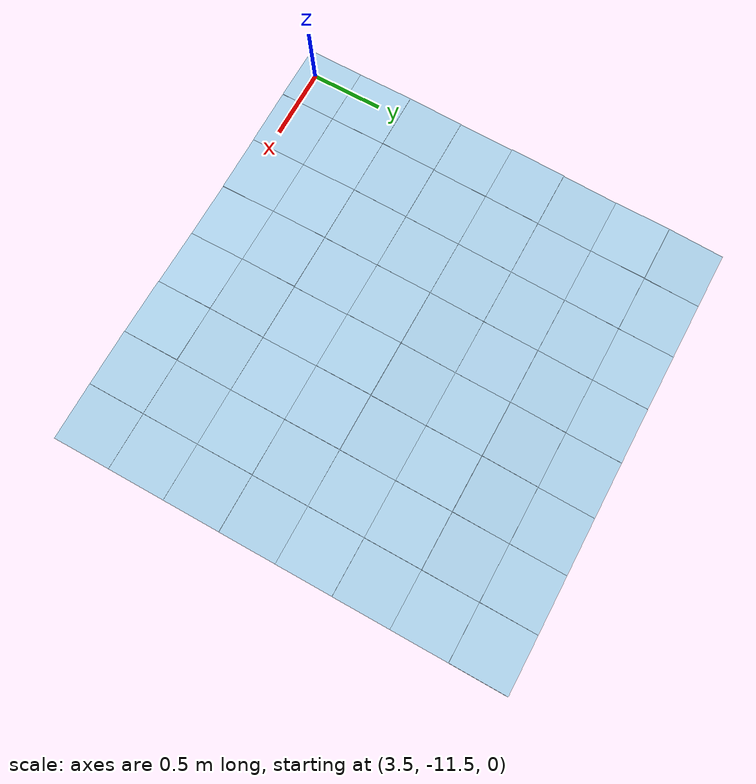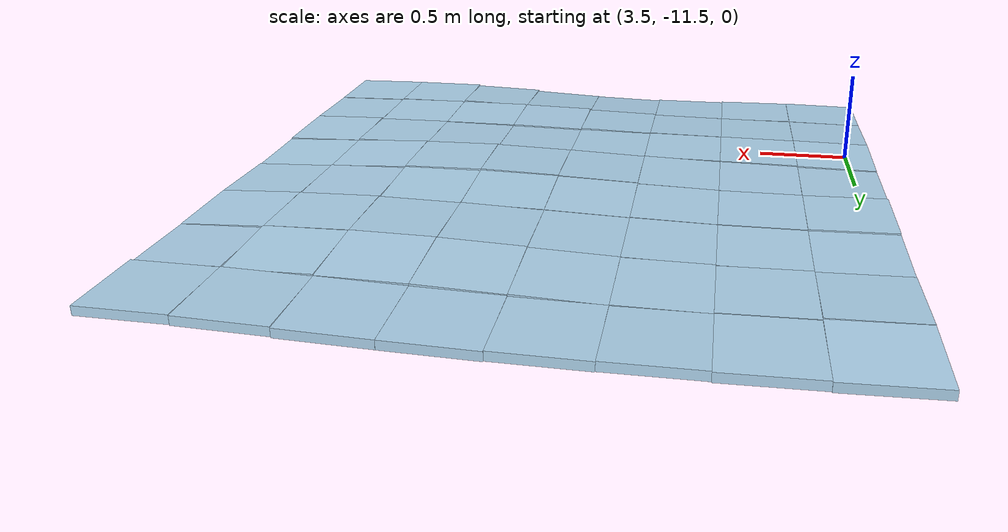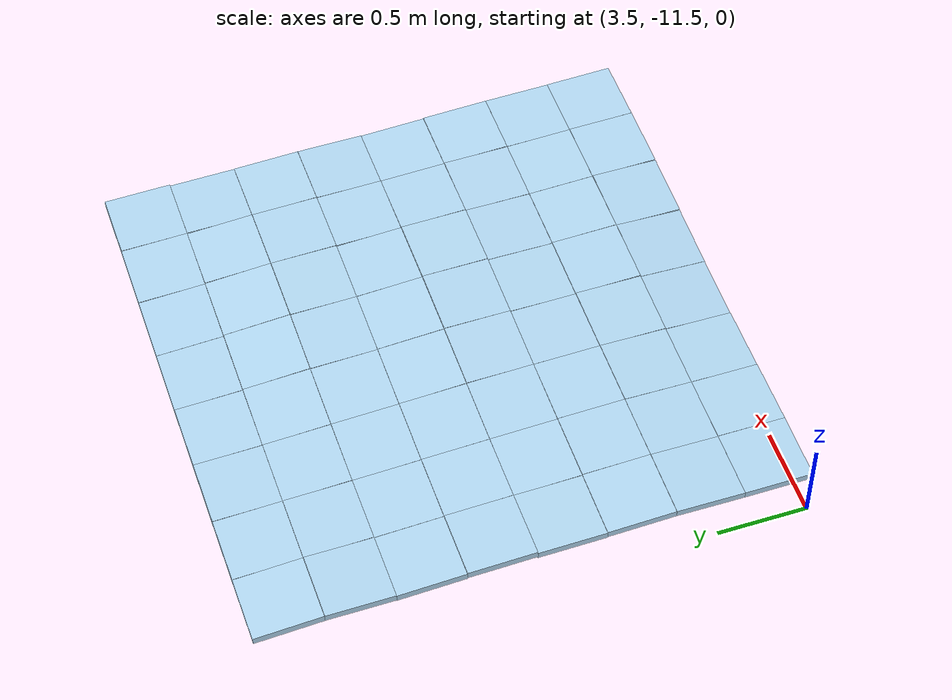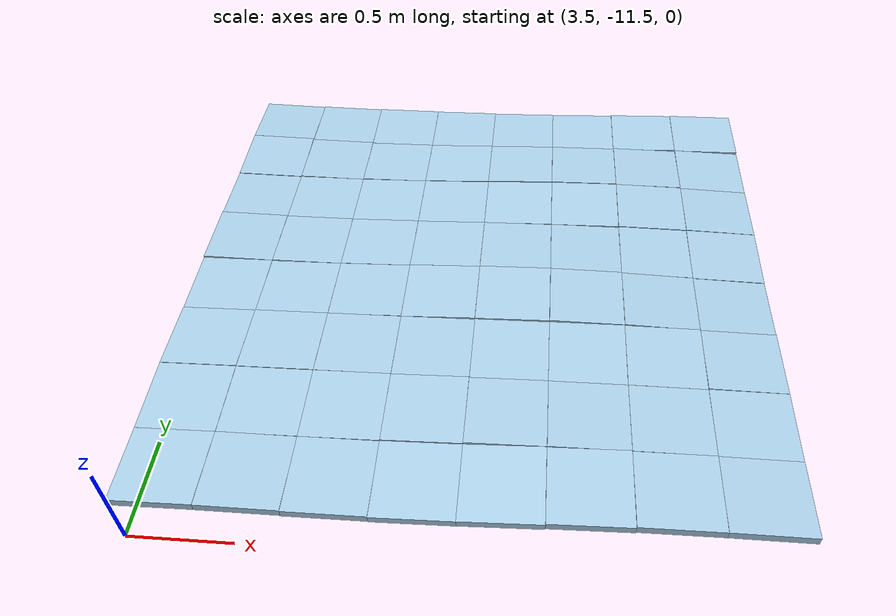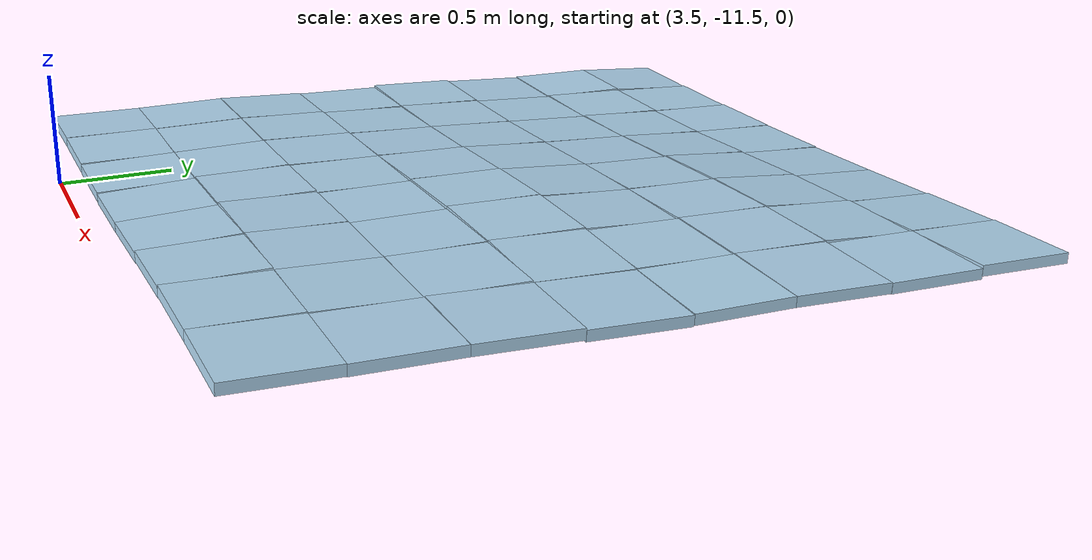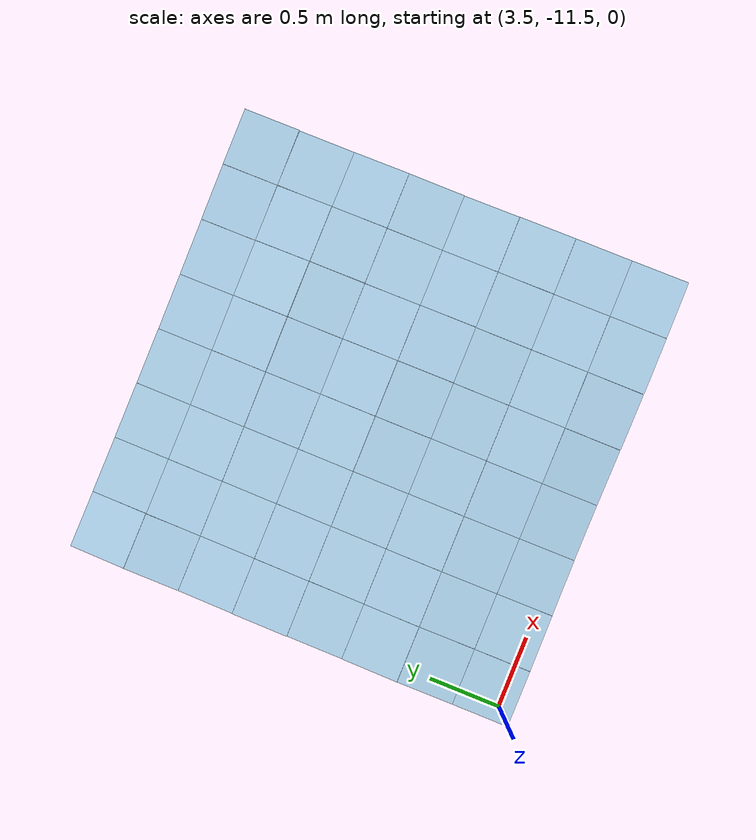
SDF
<sdf version="1.8">
 <world name="default">
  <model name="slip_patch_2">
   <static>true</static>
   <link name="t_0_0">
    <pose>3.6875 -11.3125 0.2957 -0.00874 -0.01509 0</pose>
    <collision name="collision">
     <geometry><box><size>0.3750 0.3750 0.04</size></box></geometry>
     <surface><friction><ode><mu>0.3</mu><mu2>0.3</mu2></ode></friction></surface>
    </collision>
    <visual name="visual">
     <geometry><box><size>0.3750 0.3750 0.04</size></box></geometry>
     <material>
      <ambient>0.62 0.76 0.85 1</ambient>
      <diffuse>0.70 0.85 0.95 1</diffuse>
      <specular>0.9 0.9 0.9 1</specular>
     </material>
    </visual>
   </link>
   <link name="t_0_1">
    <pose>3.6875 -10.9375 0.2955 0.00993 -0.01191 0</pose>
    <collision name="collision">
     <geometry><box><size>0.3750 0.3750 0.04</size></box></geometry>
     <surface><friction><ode><mu>0.3</mu><mu2>0.3</mu2></ode></friction></surface>
    </collision>
    <visual name="visual">
     <geometry><box><size>0.3750 0.3750 0.04</size></box></geometry>
     <material>
      <ambient>0.62 0.76 0.85 1</ambient>
      <diffuse>0.70 0.85 0.95 1</diffuse>
      <specular>0.9 0.9 0.9 1</specular>
     </material>
    </visual>
   </link>
   <link name="t_0_2">
    <pose>3.6875 -10.5625 0.2902 -0.04306 -0.01489 0</pose>
    <collision name="collision">
     <geometry><box><size>0.3750 0.3750 0.04</size></box></geometry>
     <surface><friction><ode><mu>0.3</mu><mu2>0.3</mu2></ode></friction></surface>
    </collision>
    <visual name="visual">
     <geometry><box><size>0.3750 0.3750 0.04</size></box></geometry>
     <material>
      <ambient>0.62 0.76 0.85 1</ambient>
      <diffuse>0.70 0.85 0.95 1</diffuse>
      <specular>0.9 0.9 0.9 1</specular>
     </material>
    </visual>
   </link>
   <link name="t_0_3">
    <pose>3.6875 -10.1875 0.2731 -0.02283 -0.00894 0</pose>
    <collision name="collision">
     <geometry><box><size>0.3750 0.3750 0.04</size></box></geometry>
     <surface><friction><ode><mu>0.3</mu><mu2>0.3</mu2></ode></friction></surface>
    </collision>
    <visual name="visual">
     <geometry><box><size>0.3750 0.3750 0.04</size></box></geometry>
     <material>
      <ambient>0.62 0.76 0.85 1</ambient>
      <diffuse>0.70 0.85 0.95 1</diffuse>
      <specular>0.9 0.9 0.9 1</specular>
     </material>
    </visual>
   </link>
   <link name="t_0_4">
    <pose>3.6875 -9.8125 0.2673 -0.03612 0.01628 0</pose>
    <collision name="collision">
     <geometry><box><size>0.3750 0.3750 0.04</size></box></geometry>
     <surface><friction><ode><mu>0.3</mu><mu2>0.3</mu2></ode></friction></surface>
    </collision>
    <visual name="visual">
     <geometry><box><size>0.3750 0.3750 0.04</size></box></geometry>
     <material>
      <ambient>0.62 0.76 0.85 1</ambient>
      <diffuse>0.70 0.85 0.95 1</diffuse>
      <specular>0.9 0.9 0.9 1</specular>
     </material>
    </visual>
   </link>
   <link name="t_0_5">
    <pose>3.6875 -9.4375 0.2452 -0.05257 0.01589 0</pose>
    <collision name="collision">
     <geometry><box><size>0.3750 0.3750 0.04</size></box></geometry>
     <surface><friction><ode><mu>0.3</mu><mu2>0.3</mu2></ode></friction></surface>
    </collision>
    <visual name="visual">
     <geometry><box><size>0.3750 0.3750 0.04</size></box></geometry>
     <material>
      <ambient>0.62 0.76 0.85 1</ambient>
      <diffuse>0.70 0.85 0.95 1</diffuse>
      <specular>0.9 0.9 0.9 1</specular>
     </material>
    </visual>
   </link>
   <link name="t_0_6">
    <pose>3.6875 -9.0625 0.2368 -0.00794 0.01787 0</pose>
    <collision name="collision">
     <geometry><box><size>0.3750 0.3750 0.04</size></box></geometry>
     <surface><friction><ode><mu>0.3</mu><mu2>0.3</mu2></ode></friction></surface>
    </collision>
    <visual name="visual">
     <geometry><box><size>0.3750 0.3750 0.04</size></box></geometry>
     <material>
      <ambient>0.62 0.76 0.85 1</ambient>
      <diffuse>0.70 0.85 0.95 1</diffuse>
      <specular>0.9 0.9 0.9 1</specular>
     </material>
    </visual>
   </link>
   <link name="t_0_7">
    <pose>3.6875 -8.6875 0.2204 -0.06996 0.02402 0</pose>
    <collision name="collision">
     <geometry><box><size>0.3750 0.3750 0.04</size></box></geometry>
     <surface><friction><ode><mu>0.3</mu><mu2>0.3</mu2></ode></friction></surface>
    </collision>
    <visual name="visual">
     <geometry><box><size>0.3750 0.3750 0.04</size></box></geometry>
     <material>
      <ambient>0.62 0.76 0.85 1</ambient>
      <diffuse>0.70 0.85 0.95 1</diffuse>
      <specular>0.9 0.9 0.9 1</specular>
     </material>
    </visual>
   </link>
   <link name="t_1_0">
    <pose>4.0625 -11.3125 0.2967 -0.00298 0.00894 0</pose>
    <collision name="collision">
     <geometry><box><size>0.3750 0.3750 0.04</size></box></geometry>
     <surface><friction><ode><mu>0.3</mu><mu2>0.3</mu2></ode></friction></surface>
    </collision>
    <visual name="visual">
     <geometry><box><size>0.3750 0.3750 0.04</size></box></geometry>
     <material>
      <ambient>0.62 0.76 0.85 1</ambient>
      <diffuse>0.70 0.85 0.95 1</diffuse>
      <specular>0.9 0.9 0.9 1</specular>
     </material>
    </visual>
   </link>
   <link name="t_1_1">
    <pose>4.0625 -10.9375 0.2976 0.00993 -0.00496 0</pose>
    <collision name="collision">
     <geometry><box><size>0.3750 0.3750 0.04</size></box></geometry>
     <surface><friction><ode><mu>0.3</mu><mu2>0.3</mu2></ode></friction></surface>
    </collision>
    <visual name="visual">
     <geometry><box><size>0.3750 0.3750 0.04</size></box></geometry>
     <material>
      <ambient>0.62 0.76 0.85 1</ambient>
      <diffuse>0.70 0.85 0.95 1</diffuse>
      <specular>0.9 0.9 0.9 1</specular>
     </material>
    </visual>
   </link>
   <link name="t_1_2">
    <pose>4.0625 -10.5625 0.2951 -0.03275 -0.00894 0</pose>
    <collision name="collision">
     <geometry><box><size>0.3750 0.3750 0.04</size></box></geometry>
     <surface><friction><ode><mu>0.3</mu><mu2>0.3</mu2></ode></friction></surface>
    </collision>
    <visual name="visual">
     <geometry><box><size>0.3750 0.3750 0.04</size></box></geometry>
     <material>
      <ambient>0.62 0.76 0.85 1</ambient>
      <diffuse>0.70 0.85 0.95 1</diffuse>
      <specular>0.9 0.9 0.9 1</specular>
     </material>
    </visual>
   </link>
   <link name="t_1_3">
    <pose>4.0625 -10.1875 0.2775 -0.04167 -0.01489 0</pose>
    <collision name="collision">
     <geometry><box><size>0.3750 0.3750 0.04</size></box></geometry>
     <surface><friction><ode><mu>0.3</mu><mu2>0.3</mu2></ode></friction></surface>
    </collision>
    <visual name="visual">
     <geometry><box><size>0.3750 0.3750 0.04</size></box></geometry>
     <material>
      <ambient>0.62 0.76 0.85 1</ambient>
      <diffuse>0.70 0.85 0.95 1</diffuse>
      <specular>0.9 0.9 0.9 1</specular>
     </material>
    </visual>
   </link>
   <link name="t_1_4">
    <pose>4.0625 -9.8125 0.2635 -0.04663 -0.00000 0</pose>
    <collision name="collision">
     <geometry><box><size>0.3750 0.3750 0.04</size></box></geometry>
     <surface><friction><ode><mu>0.3</mu><mu2>0.3</mu2></ode></friction></surface>
    </collision>
    <visual name="visual">
     <geometry><box><size>0.3750 0.3750 0.04</size></box></geometry>
     <material>
      <ambient>0.62 0.76 0.85 1</ambient>
      <diffuse>0.70 0.85 0.95 1</diffuse>
      <specular>0.9 0.9 0.9 1</specular>
     </material>
    </visual>
   </link>
   <link name="t_1_5">
    <pose>4.0625 -9.4375 0.2433 -0.04861 -0.00000 0</pose>
    <collision name="collision">
     <geometry><box><size>0.3750 0.3750 0.04</size></box></geometry>
     <surface><friction><ode><mu>0.3</mu><mu2>0.3</mu2></ode></friction></surface>
    </collision>
    <visual name="visual">
     <geometry><box><size>0.3750 0.3750 0.04</size></box></geometry>
     <material>
      <ambient>0.62 0.76 0.85 1</ambient>
      <diffuse>0.70 0.85 0.95 1</diffuse>
      <specular>0.9 0.9 0.9 1</specular>
     </material>
    </visual>
   </link>
   <link name="t_1_6">
    <pose>4.0625 -9.0625 0.2294 -0.03473 0.01489 0</pose>
    <collision name="collision">
     <geometry><box><size>0.3750 0.3750 0.04</size></box></geometry>
     <surface><friction><ode><mu>0.3</mu><mu2>0.3</mu2></ode></friction></surface>
    </collision>
    <visual name="visual">
     <geometry><box><size>0.3750 0.3750 0.04</size></box></geometry>
     <material>
      <ambient>0.62 0.76 0.85 1</ambient>
      <diffuse>0.70 0.85 0.95 1</diffuse>
      <specular>0.9 0.9 0.9 1</specular>
     </material>
    </visual>
   </link>
   <link name="t_1_7">
    <pose>4.0625 -8.6875 0.2123 -0.04564 0.01390 0</pose>
    <collision name="collision">
     <geometry><box><size>0.3750 0.3750 0.04</size></box></geometry>
     <surface><friction><ode><mu>0.3</mu><mu2>0.3</mu2></ode></friction></surface>
    </collision>
    <visual name="visual">
     <geometry><box><size>0.3750 0.3750 0.04</size></box></geometry>
     <material>
      <ambient>0.62 0.76 0.85 1</ambient>
      <diffuse>0.70 0.85 0.95 1</diffuse>
      <specular>0.9 0.9 0.9 1</specular>
     </material>
    </visual>
   </link>
   <link name="t_2_0">
    <pose>4.4375 -11.3125 0.2937 0.01608 0.00079 0</pose>
    <collision name="collision">
     <geometry><box><size>0.3750 0.3750 0.04</size></box></geometry>
     <surface><friction><ode><mu>0.3</mu><mu2>0.3</mu2></ode></friction></surface>
    </collision>
    <visual name="visual">
     <geometry><box><size>0.3750 0.3750 0.04</size></box></geometry>
     <material>
      <ambient>0.62 0.76 0.85 1</ambient>
      <diffuse>0.70 0.85 0.95 1</diffuse>
      <specular>0.9 0.9 0.9 1</specular>
     </material>
    </visual>
   </link>
   <link name="t_2_1">
    <pose>4.4375 -10.9375 0.3014 0.01489 -0.01191 0</pose>
    <collision name="collision">
     <geometry><box><size>0.3750 0.3750 0.04</size></box></geometry>
     <surface><friction><ode><mu>0.3</mu><mu2>0.3</mu2></ode></friction></surface>
    </collision>
    <visual name="visual">
     <geometry><box><size>0.3750 0.3750 0.04</size></box></geometry>
     <material>
      <ambient>0.62 0.76 0.85 1</ambient>
      <diffuse>0.70 0.85 0.95 1</diffuse>
      <specular>0.9 0.9 0.9 1</specular>
     </material>
    </visual>
   </link>
   <link name="t_2_2">
    <pose>4.4375 -10.5625 0.2979 -0.02799 -0.00874 0</pose>
    <collision name="collision">
     <geometry><box><size>0.3750 0.3750 0.04</size></box></geometry>
     <surface><friction><ode><mu>0.3</mu><mu2>0.3</mu2></ode></friction></surface>
    </collision>
    <visual name="visual">
     <geometry><box><size>0.3750 0.3750 0.04</size></box></geometry>
     <material>
      <ambient>0.62 0.76 0.85 1</ambient>
      <diffuse>0.70 0.85 0.95 1</diffuse>
      <specular>0.9 0.9 0.9 1</specular>
     </material>
    </visual>
   </link>
   <link name="t_2_3">
    <pose>4.4375 -10.1875 0.2851 -0.03730 -0.02740 0</pose>
    <collision name="collision">
     <geometry><box><size>0.3750 0.3750 0.04</size></box></geometry>
     <surface><friction><ode><mu>0.3</mu><mu2>0.3</mu2></ode></friction></surface>
    </collision>
    <visual name="visual">
     <geometry><box><size>0.3750 0.3750 0.04</size></box></geometry>
     <material>
      <ambient>0.62 0.76 0.85 1</ambient>
      <diffuse>0.70 0.85 0.95 1</diffuse>
      <specular>0.9 0.9 0.9 1</specular>
     </material>
    </visual>
   </link>
   <link name="t_2_4">
    <pose>4.4375 -9.8125 0.2683 -0.05256 -0.02541 0</pose>
    <collision name="collision">
     <geometry><box><size>0.3750 0.3750 0.04</size></box></geometry>
     <surface><friction><ode><mu>0.3</mu><mu2>0.3</mu2></ode></friction></surface>
    </collision>
    <visual name="visual">
     <geometry><box><size>0.3750 0.3750 0.04</size></box></geometry>
     <material>
      <ambient>0.62 0.76 0.85 1</ambient>
      <diffuse>0.70 0.85 0.95 1</diffuse>
      <specular>0.9 0.9 0.9 1</specular>
     </material>
    </visual>
   </link>
   <link name="t_2_5">
    <pose>4.4375 -9.4375 0.2477 -0.05157 -0.02184 0</pose>
    <collision name="collision">
     <geometry><box><size>0.3750 0.3750 0.04</size></box></geometry>
     <surface><friction><ode><mu>0.3</mu><mu2>0.3</mu2></ode></friction></surface>
    </collision>
    <visual name="visual">
     <geometry><box><size>0.3750 0.3750 0.04</size></box></geometry>
     <material>
      <ambient>0.62 0.76 0.85 1</ambient>
      <diffuse>0.70 0.85 0.95 1</diffuse>
      <specular>0.9 0.9 0.9 1</specular>
     </material>
    </visual>
   </link>
   <link name="t_2_6">
    <pose>4.4375 -9.0625 0.2284 -0.05653 -0.00894 0</pose>
    <collision name="collision">
     <geometry><box><size>0.3750 0.3750 0.04</size></box></geometry>
     <surface><friction><ode><mu>0.3</mu><mu2>0.3</mu2></ode></friction></surface>
    </collision>
    <visual name="visual">
     <geometry><box><size>0.3750 0.3750 0.04</size></box></geometry>
     <material>
      <ambient>0.62 0.76 0.85 1</ambient>
      <diffuse>0.70 0.85 0.95 1</diffuse>
      <specular>0.9 0.9 0.9 1</specular>
     </material>
    </visual>
   </link>
   <link name="t_2_7">
    <pose>4.4375 -8.6875 0.2104 -0.03196 0.00060 0</pose>
    <collision name="collision">
     <geometry><box><size>0.3750 0.3750 0.04</size></box></geometry>
     <surface><friction><ode><mu>0.3</mu><mu2>0.3</mu2></ode></friction></surface>
    </collision>
    <visual name="visual">
     <geometry><box><size>0.3750 0.3750 0.04</size></box></geometry>
     <material>
      <ambient>0.62 0.76 0.85 1</ambient>
      <diffuse>0.70 0.85 0.95 1</diffuse>
      <specular>0.9 0.9 0.9 1</specular>
     </material>
    </visual>
   </link>
   <link name="t_3_0">
    <pose>4.8125 -11.3125 0.2976 0.03711 -0.02541 0</pose>
    <collision name="collision">
     <geometry><box><size>0.3750 0.3750 0.04</size></box></geometry>
     <surface><friction><ode><mu>0.3</mu><mu2>0.3</mu2></ode></friction></surface>
    </collision>
    <visual name="visual">
     <geometry><box><size>0.3750 0.3750 0.04</size></box></geometry>
     <material>
      <ambient>0.62 0.76 0.85 1</ambient>
      <diffuse>0.70 0.85 0.95 1</diffuse>
      <specular>0.9 0.9 0.9 1</specular>
     </material>
    </visual>
   </link>
   <link name="t_3_1">
    <pose>4.8125 -10.9375 0.3091 -0.00199 -0.02482 0</pose>
    <collision name="collision">
     <geometry><box><size>0.3750 0.3750 0.04</size></box></geometry>
     <surface><friction><ode><mu>0.3</mu><mu2>0.3</mu2></ode></friction></surface>
    </collision>
    <visual name="visual">
     <geometry><box><size>0.3750 0.3750 0.04</size></box></geometry>
     <material>
      <ambient>0.62 0.76 0.85 1</ambient>
      <diffuse>0.70 0.85 0.95 1</diffuse>
      <specular>0.9 0.9 0.9 1</specular>
     </material>
    </visual>
   </link>
   <link name="t_3_2">
    <pose>4.8125 -10.5625 0.3007 -0.01767 -0.01092 0</pose>
    <collision name="collision">
     <geometry><box><size>0.3750 0.3750 0.04</size></box></geometry>
     <surface><friction><ode><mu>0.3</mu><mu2>0.3</mu2></ode></friction></surface>
    </collision>
    <visual name="visual">
     <geometry><box><size>0.3750 0.3750 0.04</size></box></geometry>
     <material>
      <ambient>0.62 0.76 0.85 1</ambient>
      <diffuse>0.70 0.85 0.95 1</diffuse>
      <specular>0.9 0.9 0.9 1</specular>
     </material>
    </visual>
   </link>
   <link name="t_3_3">
    <pose>4.8125 -10.1875 0.2983 -0.02123 -0.03771 0</pose>
    <collision name="collision">
     <geometry><box><size>0.3750 0.3750 0.04</size></box></geometry>
     <surface><friction><ode><mu>0.3</mu><mu2>0.3</mu2></ode></friction></surface>
    </collision>
    <visual name="visual">
     <geometry><box><size>0.3750 0.3750 0.04</size></box></geometry>
     <material>
      <ambient>0.62 0.76 0.85 1</ambient>
      <diffuse>0.70 0.85 0.95 1</diffuse>
      <specular>0.9 0.9 0.9 1</specular>
     </material>
    </visual>
   </link>
   <link name="t_3_4">
    <pose>4.8125 -9.8125 0.2800 -0.06817 -0.03355 0</pose>
    <collision name="collision">
     <geometry><box><size>0.3750 0.3750 0.04</size></box></geometry>
     <surface><friction><ode><mu>0.3</mu><mu2>0.3</mu2></ode></friction></surface>
    </collision>
    <visual name="visual">
     <geometry><box><size>0.3750 0.3750 0.04</size></box></geometry>
     <material>
      <ambient>0.62 0.76 0.85 1</ambient>
      <diffuse>0.70 0.85 0.95 1</diffuse>
      <specular>0.9 0.9 0.9 1</specular>
     </material>
    </visual>
   </link>
   <link name="t_3_5">
    <pose>4.8125 -9.4375 0.2574 -0.04720 -0.03176 0</pose>
    <collision name="collision">
     <geometry><box><size>0.3750 0.3750 0.04</size></box></geometry>
     <surface><friction><ode><mu>0.3</mu><mu2>0.3</mu2></ode></friction></surface>
    </collision>
    <visual name="visual">
     <geometry><box><size>0.3750 0.3750 0.04</size></box></geometry>
     <material>
      <ambient>0.62 0.76 0.85 1</ambient>
      <diffuse>0.70 0.85 0.95 1</diffuse>
      <specular>0.9 0.9 0.9 1</specular>
     </material>
    </visual>
   </link>
   <link name="t_3_6">
    <pose>4.8125 -9.0625 0.2374 -0.06934 -0.03771 0</pose>
    <collision name="collision">
     <geometry><box><size>0.3750 0.3750 0.04</size></box></geometry>
     <surface><friction><ode><mu>0.3</mu><mu2>0.3</mu2></ode></friction></surface>
    </collision>
    <visual name="visual">
     <geometry><box><size>0.3750 0.3750 0.04</size></box></geometry>
     <material>
      <ambient>0.62 0.76 0.85 1</ambient>
      <diffuse>0.70 0.85 0.95 1</diffuse>
      <specular>0.9 0.9 0.9 1</specular>
     </material>
    </visual>
   </link>
   <link name="t_3_7">
    <pose>4.8125 -8.6875 0.2126 -0.04306 -0.01191 0</pose>
    <collision name="collision">
     <geometry><box><size>0.3750 0.3750 0.04</size></box></geometry>
     <surface><friction><ode><mu>0.3</mu><mu2>0.3</mu2></ode></friction></surface>
    </collision>
    <visual name="visual">
     <geometry><box><size>0.3750 0.3750 0.04</size></box></geometry>
     <material>
      <ambient>0.62 0.76 0.85 1</ambient>
      <diffuse>0.70 0.85 0.95 1</diffuse>
      <specular>0.9 0.9 0.9 1</specular>
     </material>
    </visual>
   </link>
   <link name="t_4_0">
    <pose>5.1875 -11.3125 0.3122 0.03609 -0.04663 0</pose>
    <collision name="collision">
     <geometry><box><size>0.3750 0.3750 0.04</size></box></geometry>
     <surface><friction><ode><mu>0.3</mu><mu2>0.3</mu2></ode></friction></surface>
    </collision>
    <visual name="visual">
     <geometry><box><size>0.3750 0.3750 0.04</size></box></geometry>
     <material>
      <ambient>0.62 0.76 0.85 1</ambient>
      <diffuse>0.70 0.85 0.95 1</diffuse>
      <specular>0.9 0.9 0.9 1</specular>
     </material>
    </visual>
   </link>
   <link name="t_4_1">
    <pose>5.1875 -10.9375 0.3181 -0.03077 -0.01886 0</pose>
    <collision name="collision">
     <geometry><box><size>0.3750 0.3750 0.04</size></box></geometry>
     <surface><friction><ode><mu>0.3</mu><mu2>0.3</mu2></ode></friction></surface>
    </collision>
    <visual name="visual">
     <geometry><box><size>0.3750 0.3750 0.04</size></box></geometry>
     <material>
      <ambient>0.62 0.76 0.85 1</ambient>
      <diffuse>0.70 0.85 0.95 1</diffuse>
      <specular>0.9 0.9 0.9 1</specular>
     </material>
    </visual>
   </link>
   <link name="t_4_2">
    <pose>5.1875 -10.5625 0.3058 -0.00258 -0.01450 0</pose>
    <collision name="collision">
     <geometry><box><size>0.3750 0.3750 0.04</size></box></geometry>
     <surface><friction><ode><mu>0.3</mu><mu2>0.3</mu2></ode></friction></surface>
    </collision>
    <visual name="visual">
     <geometry><box><size>0.3750 0.3750 0.04</size></box></geometry>
     <material>
      <ambient>0.62 0.76 0.85 1</ambient>
      <diffuse>0.70 0.85 0.95 1</diffuse>
      <specular>0.9 0.9 0.9 1</specular>
     </material>
    </visual>
   </link>
   <link name="t_4_3">
    <pose>5.1875 -10.1875 0.3109 -0.01270 -0.02601 0</pose>
    <collision name="collision">
     <geometry><box><size>0.3750 0.3750 0.04</size></box></geometry>
     <surface><friction><ode><mu>0.3</mu><mu2>0.3</mu2></ode></friction></surface>
    </collision>
    <visual name="visual">
     <geometry><box><size>0.3750 0.3750 0.04</size></box></geometry>
     <material>
      <ambient>0.62 0.76 0.85 1</ambient>
      <diffuse>0.70 0.85 0.95 1</diffuse>
      <specular>0.9 0.9 0.9 1</specular>
     </material>
    </visual>
   </link>
   <link name="t_4_4">
    <pose>5.1875 -9.8125 0.2909 -0.07195 -0.01886 0</pose>
    <collision name="collision">
     <geometry><box><size>0.3750 0.3750 0.04</size></box></geometry>
     <surface><friction><ode><mu>0.3</mu><mu2>0.3</mu2></ode></friction></surface>
    </collision>
    <visual name="visual">
     <geometry><box><size>0.3750 0.3750 0.04</size></box></geometry>
     <material>
      <ambient>0.62 0.76 0.85 1</ambient>
      <diffuse>0.70 0.85 0.95 1</diffuse>
      <specular>0.9 0.9 0.9 1</specular>
     </material>
    </visual>
   </link>
   <link name="t_4_5">
    <pose>5.1875 -9.4375 0.2711 -0.03531 -0.03474 0</pose>
    <collision name="collision">
     <geometry><box><size>0.3750 0.3750 0.04</size></box></geometry>
     <surface><friction><ode><mu>0.3</mu><mu2>0.3</mu2></ode></friction></surface>
    </collision>
    <visual name="visual">
     <geometry><box><size>0.3750 0.3750 0.04</size></box></geometry>
     <material>
      <ambient>0.62 0.76 0.85 1</ambient>
      <diffuse>0.70 0.85 0.95 1</diffuse>
      <specular>0.9 0.9 0.9 1</specular>
     </material>
    </visual>
   </link>
   <link name="t_4_6">
    <pose>5.1875 -9.0625 0.2523 -0.08512 -0.03771 0</pose>
    <collision name="collision">
     <geometry><box><size>0.3750 0.3750 0.04</size></box></geometry>
     <surface><friction><ode><mu>0.3</mu><mu2>0.3</mu2></ode></friction></surface>
    </collision>
    <visual name="visual">
     <geometry><box><size>0.3750 0.3750 0.04</size></box></geometry>
     <material>
      <ambient>0.62 0.76 0.85 1</ambient>
      <diffuse>0.70 0.85 0.95 1</diffuse>
      <specular>0.9 0.9 0.9 1</specular>
     </material>
    </visual>
   </link>
   <link name="t_4_7">
    <pose>5.1875 -8.6875 0.2193 -0.05850 -0.02383 0</pose>
    <collision name="collision">
     <geometry><box><size>0.3750 0.3750 0.04</size></box></geometry>
     <surface><friction><ode><mu>0.3</mu><mu2>0.3</mu2></ode></friction></surface>
    </collision>
    <visual name="visual">
     <geometry><box><size>0.3750 0.3750 0.04</size></box></geometry>
     <material>
      <ambient>0.62 0.76 0.85 1</ambient>
      <diffuse>0.70 0.85 0.95 1</diffuse>
      <specular>0.9 0.9 0.9 1</specular>
     </material>
    </visual>
   </link>
   <link name="t_5_0">
    <pose>5.5625 -11.3125 0.3288 0.00734 -0.03295 0</pose>
    <collision name="collision">
     <geometry><box><size>0.3750 0.3750 0.04</size></box></geometry>
     <surface><friction><ode><mu>0.3</mu><mu2>0.3</mu2></ode></friction></surface>
    </collision>
    <visual name="visual">
     <geometry><box><size>0.3750 0.3750 0.04</size></box></geometry>
     <material>
      <ambient>0.62 0.76 0.85 1</ambient>
      <diffuse>0.70 0.85 0.95 1</diffuse>
      <specular>0.9 0.9 0.9 1</specular>
     </material>
    </visual>
   </link>
   <link name="t_5_1">
    <pose>5.5625 -10.9375 0.3225 -0.03970 -0.00397 0</pose>
    <collision name="collision">
     <geometry><box><size>0.3750 0.3750 0.04</size></box></geometry>
     <surface><friction><ode><mu>0.3</mu><mu2>0.3</mu2></ode></friction></surface>
    </collision>
    <visual name="visual">
     <geometry><box><size>0.3750 0.3750 0.04</size></box></geometry>
     <material>
      <ambient>0.62 0.76 0.85 1</ambient>
      <diffuse>0.70 0.85 0.95 1</diffuse>
      <specular>0.9 0.9 0.9 1</specular>
     </material>
    </visual>
   </link>
   <link name="t_5_2">
    <pose>5.5625 -10.5625 0.3116 -0.00119 -0.01072 0</pose>
    <collision name="collision">
     <geometry><box><size>0.3750 0.3750 0.04</size></box></geometry>
     <surface><friction><ode><mu>0.3</mu><mu2>0.3</mu2></ode></friction></surface>
    </collision>
    <visual name="visual">
     <geometry><box><size>0.3750 0.3750 0.04</size></box></geometry>
     <material>
      <ambient>0.62 0.76 0.85 1</ambient>
      <diffuse>0.70 0.85 0.95 1</diffuse>
      <specular>0.9 0.9 0.9 1</specular>
     </material>
    </visual>
   </link>
   <link name="t_5_3">
    <pose>5.5625 -10.1875 0.3140 -0.02144 0.01132 0</pose>
    <collision name="collision">
     <geometry><box><size>0.3750 0.3750 0.04</size></box></geometry>
     <surface><friction><ode><mu>0.3</mu><mu2>0.3</mu2></ode></friction></surface>
    </collision>
    <visual name="visual">
     <geometry><box><size>0.3750 0.3750 0.04</size></box></geometry>
     <material>
      <ambient>0.62 0.76 0.85 1</ambient>
      <diffuse>0.70 0.85 0.95 1</diffuse>
      <specular>0.9 0.9 0.9 1</specular>
     </material>
    </visual>
   </link>
   <link name="t_5_4">
    <pose>5.5625 -9.8125 0.2933 -0.05891 0.00278 0</pose>
    <collision name="collision">
     <geometry><box><size>0.3750 0.3750 0.04</size></box></geometry>
     <surface><friction><ode><mu>0.3</mu><mu2>0.3</mu2></ode></friction></surface>
    </collision>
    <visual name="visual">
     <geometry><box><size>0.3750 0.3750 0.04</size></box></geometry>
     <material>
      <ambient>0.62 0.76 0.85 1</ambient>
      <diffuse>0.70 0.85 0.95 1</diffuse>
      <specular>0.9 0.9 0.9 1</specular>
     </material>
    </visual>
   </link>
   <link name="t_5_5">
    <pose>5.5625 -9.4375 0.2815 -0.02164 -0.01807 0</pose>
    <collision name="collision">
     <geometry><box><size>0.3750 0.3750 0.04</size></box></geometry>
     <surface><friction><ode><mu>0.3</mu><mu2>0.3</mu2></ode></friction></surface>
    </collision>
    <visual name="visual">
     <geometry><box><size>0.3750 0.3750 0.04</size></box></geometry>
     <material>
      <ambient>0.62 0.76 0.85 1</ambient>
      <diffuse>0.70 0.85 0.95 1</diffuse>
      <specular>0.9 0.9 0.9 1</specular>
     </material>
    </visual>
   </link>
   <link name="t_5_6">
    <pose>5.5625 -9.0625 0.2623 -0.08912 -0.01390 0</pose>
    <collision name="collision">
     <geometry><box><size>0.3750 0.3750 0.04</size></box></geometry>
     <surface><friction><ode><mu>0.3</mu><mu2>0.3</mu2></ode></friction></surface>
    </collision>
    <visual name="visual">
     <geometry><box><size>0.3750 0.3750 0.04</size></box></geometry>
     <material>
      <ambient>0.62 0.76 0.85 1</ambient>
      <diffuse>0.70 0.85 0.95 1</diffuse>
      <specular>0.9 0.9 0.9 1</specular>
     </material>
    </visual>
   </link>
   <link name="t_5_7">
    <pose>5.5625 -8.6875 0.2300 -0.06066 -0.03097 0</pose>
    <collision name="collision">
     <geometry><box><size>0.3750 0.3750 0.04</size></box></geometry>
     <surface><friction><ode><mu>0.3</mu><mu2>0.3</mu2></ode></friction></surface>
    </collision>
    <visual name="visual">
     <geometry><box><size>0.3750 0.3750 0.04</size></box></geometry>
     <material>
      <ambient>0.62 0.76 0.85 1</ambient>
      <diffuse>0.70 0.85 0.95 1</diffuse>
      <specular>0.9 0.9 0.9 1</specular>
     </material>
    </visual>
   </link>
   <link name="t_6_0">
    <pose>5.9375 -11.3125 0.3352 -0.02581 -0.00397 0</pose>
    <collision name="collision">
     <geometry><box><size>0.3750 0.3750 0.04</size></box></geometry>
     <surface><friction><ode><mu>0.3</mu><mu2>0.3</mu2></ode></friction></surface>
    </collision>
    <visual name="visual">
     <geometry><box><size>0.3750 0.3750 0.04</size></box></geometry>
     <material>
      <ambient>0.62 0.76 0.85 1</ambient>
      <diffuse>0.70 0.85 0.95 1</diffuse>
      <specular>0.9 0.9 0.9 1</specular>
     </material>
    </visual>
   </link>
   <link name="t_6_1">
    <pose>5.9375 -10.9375 0.3225 -0.03970 0.00496 0</pose>
    <collision name="collision">
     <geometry><box><size>0.3750 0.3750 0.04</size></box></geometry>
     <surface><friction><ode><mu>0.3</mu><mu2>0.3</mu2></ode></friction></surface>
    </collision>
    <visual name="visual">
     <geometry><box><size>0.3750 0.3750 0.04</size></box></geometry>
     <material>
      <ambient>0.62 0.76 0.85 1</ambient>
      <diffuse>0.70 0.85 0.95 1</diffuse>
      <specular>0.9 0.9 0.9 1</specular>
     </material>
    </visual>
   </link>
   <link name="t_6_2">
    <pose>5.9375 -10.5625 0.3125 -0.01489 0.00596 0</pose>
    <collision name="collision">
     <geometry><box><size>0.3750 0.3750 0.04</size></box></geometry>
     <surface><friction><ode><mu>0.3</mu><mu2>0.3</mu2></ode></friction></surface>
    </collision>
    <visual name="visual">
     <geometry><box><size>0.3750 0.3750 0.04</size></box></geometry>
     <material>
      <ambient>0.62 0.76 0.85 1</ambient>
      <diffuse>0.70 0.85 0.95 1</diffuse>
      <specular>0.9 0.9 0.9 1</specular>
     </material>
    </visual>
   </link>
   <link name="t_6_3">
    <pose>5.9375 -10.1875 0.3035 -0.03768 0.03870 0</pose>
    <collision name="collision">
     <geometry><box><size>0.3750 0.3750 0.04</size></box></geometry>
     <surface><friction><ode><mu>0.3</mu><mu2>0.3</mu2></ode></friction></surface>
    </collision>
    <visual name="visual">
     <geometry><box><size>0.3750 0.3750 0.04</size></box></geometry>
     <material>
      <ambient>0.62 0.76 0.85 1</ambient>
      <diffuse>0.70 0.85 0.95 1</diffuse>
      <specular>0.9 0.9 0.9 1</specular>
     </material>
    </visual>
   </link>
   <link name="t_6_4">
    <pose>5.9375 -9.8125 0.2893 -0.02680 0.01787 0</pose>
    <collision name="collision">
     <geometry><box><size>0.3750 0.3750 0.04</size></box></geometry>
     <surface><friction><ode><mu>0.3</mu><mu2>0.3</mu2></ode></friction></surface>
    </collision>
    <visual name="visual">
     <geometry><box><size>0.3750 0.3750 0.04</size></box></geometry>
     <material>
      <ambient>0.62 0.76 0.85 1</ambient>
      <diffuse>0.70 0.85 0.95 1</diffuse>
      <specular>0.9 0.9 0.9 1</specular>
     </material>
    </visual>
   </link>
   <link name="t_6_5">
    <pose>5.9375 -9.4375 0.2824 -0.02878 0.01589 0</pose>
    <collision name="collision">
     <geometry><box><size>0.3750 0.3750 0.04</size></box></geometry>
     <surface><friction><ode><mu>0.3</mu><mu2>0.3</mu2></ode></friction></surface>
    </collision>
    <visual name="visual">
     <geometry><box><size>0.3750 0.3750 0.04</size></box></geometry>
     <material>
      <ambient>0.62 0.76 0.85 1</ambient>
      <diffuse>0.70 0.85 0.95 1</diffuse>
      <specular>0.9 0.9 0.9 1</specular>
     </material>
    </visual>
   </link>
   <link name="t_6_6">
    <pose>5.9375 -9.0625 0.2635 -0.06939 0.00993 0</pose>
    <collision name="collision">
     <geometry><box><size>0.3750 0.3750 0.04</size></box></geometry>
     <surface><friction><ode><mu>0.3</mu><mu2>0.3</mu2></ode></friction></surface>
    </collision>
    <visual name="visual">
     <geometry><box><size>0.3750 0.3750 0.04</size></box></geometry>
     <material>
      <ambient>0.62 0.76 0.85 1</ambient>
      <diffuse>0.70 0.85 0.95 1</diffuse>
      <specular>0.9 0.9 0.9 1</specular>
     </material>
    </visual>
   </link>
   <link name="t_6_7">
    <pose>5.9375 -8.6875 0.2424 -0.04463 -0.02879 0</pose>
    <collision name="collision">
     <geometry><box><size>0.3750 0.3750 0.04</size></box></geometry>
     <surface><friction><ode><mu>0.3</mu><mu2>0.3</mu2></ode></friction></surface>
    </collision>
    <visual name="visual">
     <geometry><box><size>0.3750 0.3750 0.04</size></box></geometry>
     <material>
      <ambient>0.62 0.76 0.85 1</ambient>
      <diffuse>0.70 0.85 0.95 1</diffuse>
      <specular>0.9 0.9 0.9 1</specular>
     </material>
    </visual>
   </link>
   <link name="t_7_0">
    <pose>6.3125 -11.3125 0.3321 -0.03692 0.01251 0</pose>
    <collision name="collision">
     <geometry><box><size>0.3750 0.3750 0.04</size></box></geometry>
     <surface><friction><ode><mu>0.3</mu><mu2>0.3</mu2></ode></friction></surface>
    </collision>
    <visual name="visual">
     <geometry><box><size>0.3750 0.3750 0.04</size></box></geometry>
     <material>
      <ambient>0.62 0.76 0.85 1</ambient>
      <diffuse>0.70 0.85 0.95 1</diffuse>
      <specular>0.9 0.9 0.9 1</specular>
     </material>
    </visual>
   </link>
   <link name="t_7_1">
    <pose>6.3125 -10.9375 0.3187 -0.02482 0.00993 0</pose>
    <collision name="collision">
     <geometry><box><size>0.3750 0.3750 0.04</size></box></geometry>
     <surface><friction><ode><mu>0.3</mu><mu2>0.3</mu2></ode></friction></surface>
    </collision>
    <visual name="visual">
     <geometry><box><size>0.3750 0.3750 0.04</size></box></geometry>
     <material>
      <ambient>0.62 0.76 0.85 1</ambient>
      <diffuse>0.70 0.85 0.95 1</diffuse>
      <specular>0.9 0.9 0.9 1</specular>
     </material>
    </visual>
   </link>
   <link name="t_7_2">
    <pose>6.3125 -10.5625 0.3076 -0.04266 0.01886 0</pose>
    <collision name="collision">
     <geometry><box><size>0.3750 0.3750 0.04</size></box></geometry>
     <surface><friction><ode><mu>0.3</mu><mu2>0.3</mu2></ode></friction></surface>
    </collision>
    <visual name="visual">
     <geometry><box><size>0.3750 0.3750 0.04</size></box></geometry>
     <material>
      <ambient>0.62 0.76 0.85 1</ambient>
      <diffuse>0.70 0.85 0.95 1</diffuse>
      <specular>0.9 0.9 0.9 1</specular>
     </material>
    </visual>
   </link>
   <link name="t_7_3">
    <pose>6.3125 -10.1875 0.2882 -0.04502 0.03513 0</pose>
    <collision name="collision">
     <geometry><box><size>0.3750 0.3750 0.04</size></box></geometry>
     <surface><friction><ode><mu>0.3</mu><mu2>0.3</mu2></ode></friction></surface>
    </collision>
    <visual name="visual">
     <geometry><box><size>0.3750 0.3750 0.04</size></box></geometry>
     <material>
      <ambient>0.62 0.76 0.85 1</ambient>
      <diffuse>0.70 0.85 0.95 1</diffuse>
      <specular>0.9 0.9 0.9 1</specular>
     </material>
    </visual>
   </link>
   <link name="t_7_4">
    <pose>6.3125 -9.8125 0.2799 -0.01092 0.02978 0</pose>
    <collision name="collision">
     <geometry><box><size>0.3750 0.3750 0.04</size></box></geometry>
     <surface><friction><ode><mu>0.3</mu><mu2>0.3</mu2></ode></friction></surface>
    </collision>
    <visual name="visual">
     <geometry><box><size>0.3750 0.3750 0.04</size></box></geometry>
     <material>
      <ambient>0.62 0.76 0.85 1</ambient>
      <diffuse>0.70 0.85 0.95 1</diffuse>
      <specular>0.9 0.9 0.9 1</specular>
     </material>
    </visual>
   </link>
   <link name="t_7_5">
    <pose>6.3125 -9.4375 0.2715 -0.04066 0.03652 0</pose>
    <collision name="collision">
     <geometry><box><size>0.3750 0.3750 0.04</size></box></geometry>
     <surface><friction><ode><mu>0.3</mu><mu2>0.3</mu2></ode></friction></surface>
    </collision>
    <visual name="visual">
     <geometry><box><size>0.3750 0.3750 0.04</size></box></geometry>
     <material>
      <ambient>0.62 0.76 0.85 1</ambient>
      <diffuse>0.70 0.85 0.95 1</diffuse>
      <specular>0.9 0.9 0.9 1</specular>
     </material>
    </visual>
   </link>
   <link name="t_7_6">
    <pose>6.3125 -9.0625 0.2554 -0.02382 0.02482 0</pose>
    <collision name="collision">
     <geometry><box><size>0.3750 0.3750 0.04</size></box></geometry>
     <surface><friction><ode><mu>0.3</mu><mu2>0.3</mu2></ode></friction></surface>
    </collision>
    <visual name="visual">
     <geometry><box><size>0.3750 0.3750 0.04</size></box></geometry>
     <material>
      <ambient>0.62 0.76 0.85 1</ambient>
      <diffuse>0.70 0.85 0.95 1</diffuse>
      <specular>0.9 0.9 0.9 1</specular>
     </material>
    </visual>
   </link>
   <link name="t_7_7">
    <pose>6.3125 -8.6875 0.2498 -0.03117 -0.00894 0</pose>
    <collision name="collision">
     <geometry><box><size>0.3750 0.3750 0.04</size></box></geometry>
     <surface><friction><ode><mu>0.3</mu><mu2>0.3</mu2></ode></friction></surface>
    </collision>
    <visual name="visual">
     <geometry><box><size>0.3750 0.3750 0.04</size></box></geometry>
     <material>
      <ambient>0.62 0.76 0.85 1</ambient>
      <diffuse>0.70 0.85 0.95 1</diffuse>
      <specular>0.9 0.9 0.9 1</specular>
     </material>
    </visual>
   </link>
  </model>
 </world>
</sdf>
